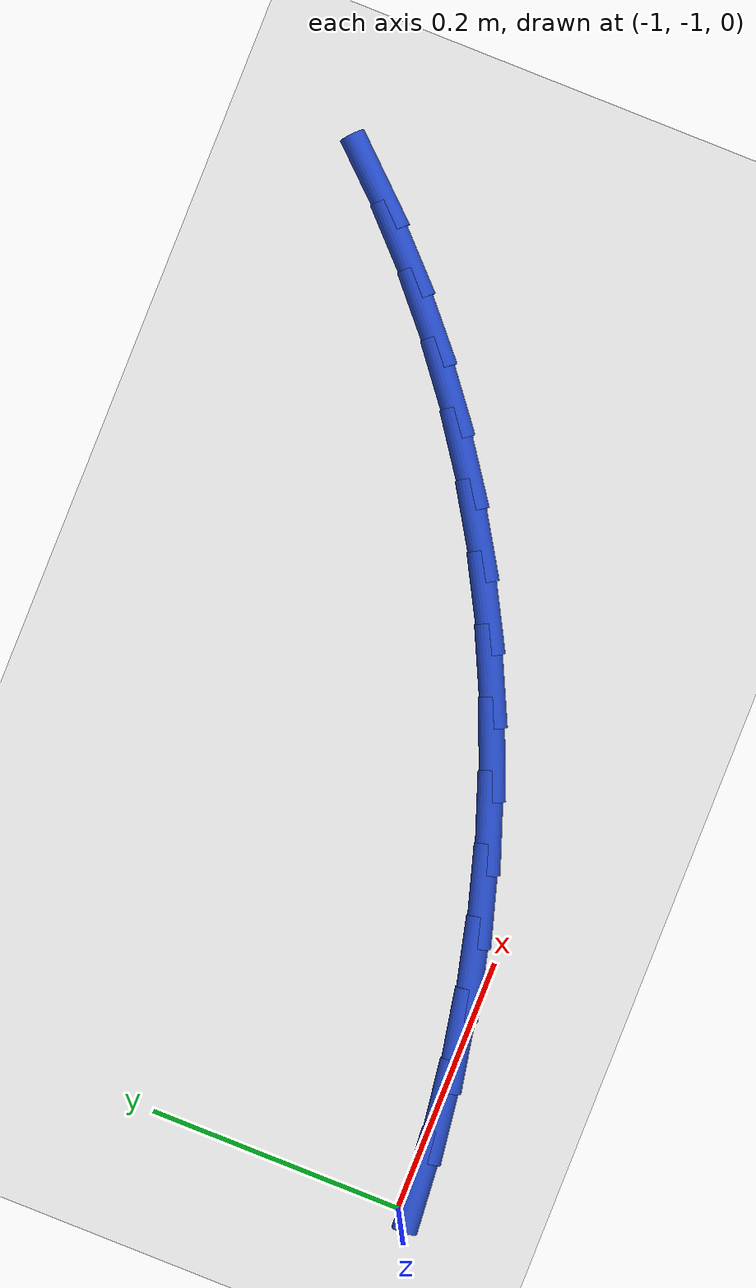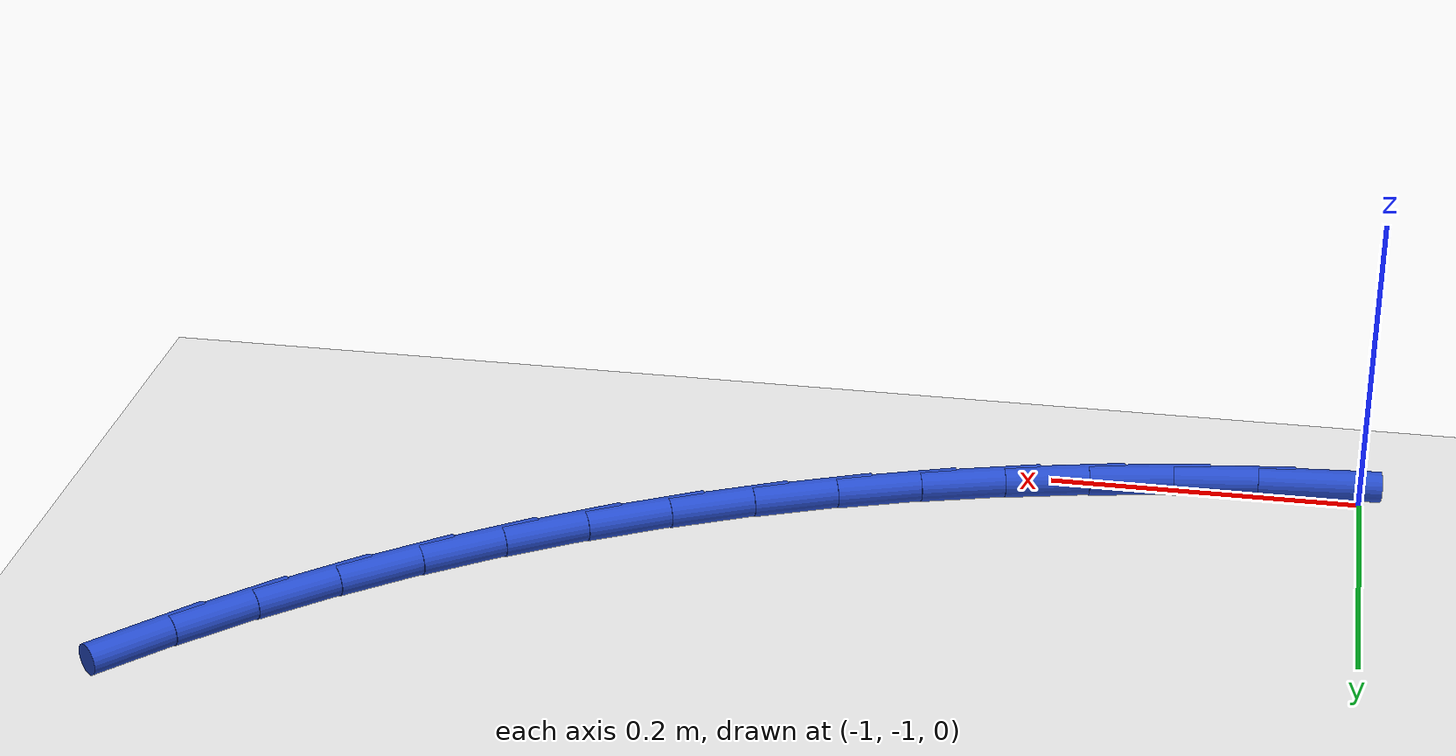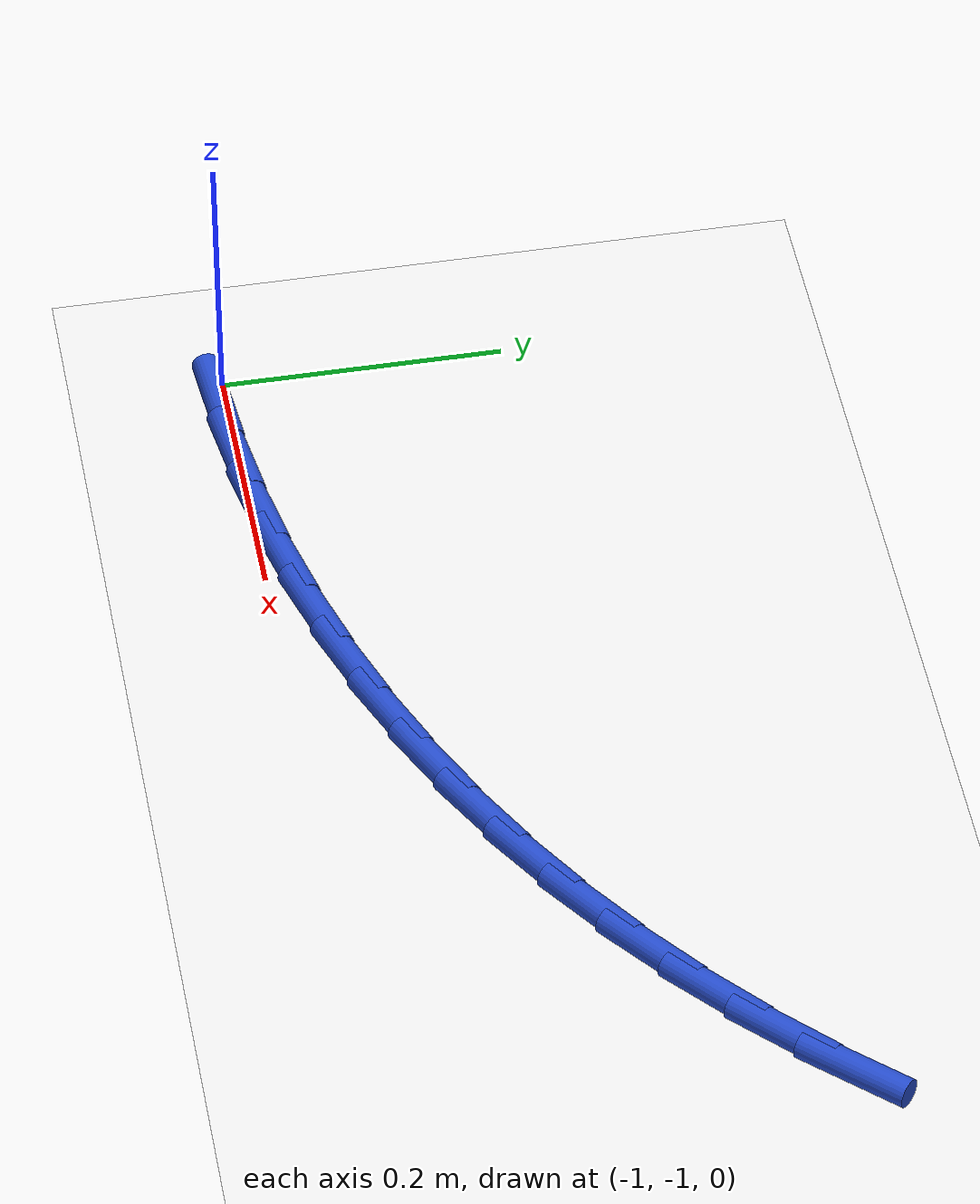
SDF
<sdf version="1.6">
 <world name="default">
  <model name="ground_plane">
   <static>1</static>
   <link name="link">
    <collision name="collision">
     <geometry><plane><normal>0 0 1</normal><size>100 100</size></plane></geometry>
     <surface><friction><ode><mu>100</mu><mu2>50</mu2></ode></friction></surface>
    </collision>
    <visual name="visual">
     <cast_shadows>0</cast_shadows>
     <geometry><plane><normal>0 0 1</normal><size>100 100</size></plane></geometry>
     <material>
      <script><uri>file://media/materials/scripts/gazebo.material</uri><name>Gazebo/WhiteGlow</name></script>
     </material>
    </visual>
   </link>
  </model>
  <model name="line">
   <link name="link_92">
    <pose>-0.9734558798783511 -1.0067008944509477 0.01 0 1.57 0.08328444719657113</pose>
    <collision name="collision">
     <geometry><cylinder><radius>0.01</radius><length>0.08</length></cylinder></geometry>
    </collision>
    <visual name="visual">
     <material>
      <script><name>Gazebo/Blue</name><uri>file://media/materials/scripts/gazebo.material</uri></script>
     </material>
     <geometry><cylinder><radius>0.01</radius><length>0.08</length></cylinder></geometry>
    </visual>
   </link>
   <link name="link_93">
    <pose>-0.9185088797695751 -1.0021140537814608 0.01 0 1.57 0.13458699041180158</pose>
    <collision name="collision">
     <geometry><cylinder><radius>0.01</radius><length>0.08</length></cylinder></geometry>
    </collision>
    <visual name="visual">
     <material>
      <script><name>Gazebo/Blue</name><uri>file://media/materials/scripts/gazebo.material</uri></script>
     </material>
     <geometry><cylinder><radius>0.01</radius><length>0.08</length></cylinder></geometry>
    </visual>
   </link>
   <link name="link_94">
    <pose>-0.8636996952805747 -0.9946925864152601 0.01 0 1.57 0.18554832372393104</pose>
    <collision name="collision">
     <geometry><cylinder><radius>0.01</radius><length>0.08</length></cylinder></geometry>
    </collision>
    <visual name="visual">
     <material>
      <script><name>Gazebo/Blue</name><uri>file://media/materials/scripts/gazebo.material</uri></script>
     </material>
     <geometry><cylinder><radius>0.01</radius><length>0.08</length></cylinder></geometry>
    </visual>
   </link>
   <link name="link_95">
    <pose>-0.809215688389461 -0.9844655337283084 0.01 0 1.57 0.23642854008055744</pose>
    <collision name="collision">
     <geometry><cylinder><radius>0.01</radius><length>0.08</length></cylinder></geometry>
    </collision>
    <visual name="visual">
     <material>
      <script><name>Gazebo/Blue</name><uri>file://media/materials/scripts/gazebo.material</uri></script>
     </material>
     <geometry><cylinder><radius>0.01</radius><length>0.08</length></cylinder></geometry>
    </visual>
   </link>
   <link name="link_96">
    <pose>-0.7552442210743454 -0.9714619370965677 0.01 0 1.57 0.28748469710778074</pose>
    <collision name="collision">
     <geometry><cylinder><radius>0.01</radius><length>0.08</length></cylinder></geometry>
    </collision>
    <visual name="visual">
     <material>
      <script><name>Gazebo/Blue</name><uri>file://media/materials/scripts/gazebo.material</uri></script>
     </material>
     <geometry><cylinder><radius>0.01</radius><length>0.08</length></cylinder></geometry>
    </visual>
   </link>
   <link name="link_97">
    <pose>-0.7019726553133424 -0.9557108378960023 0.01 0 1.57 0.3389697637907815</pose>
    <collision name="collision">
     <geometry><cylinder><radius>0.01</radius><length>0.08</length></cylinder></geometry>
    </collision>
    <visual name="visual">
     <material>
      <script><name>Gazebo/Blue</name><uri>file://media/materials/scripts/gazebo.material</uri></script>
     </material>
     <geometry><cylinder><radius>0.01</radius><length>0.08</length></cylinder></geometry>
    </visual>
   </link>
   <link name="link_98">
    <pose>-0.6495883530845631 -0.9372412775025741 0.01 0 1.57 0.39113128748771897</pose>
    <collision name="collision">
     <geometry><cylinder><radius>0.01</radius><length>0.08</length></cylinder></geometry>
    </collision>
    <visual name="visual">
     <material>
      <script><name>Gazebo/Blue</name><uri>file://media/materials/scripts/gazebo.material</uri></script>
     </material>
     <geometry><cylinder><radius>0.01</radius><length>0.08</length></cylinder></geometry>
    </visual>
   </link>
   <link name="link_99">
    <pose>-0.5982786763661199 -0.9160822972922472 0.01 0 1.57 0.4442094971681144</pose>
    <collision name="collision">
     <geometry><cylinder><radius>0.01</radius><length>0.08</length></cylinder></geometry>
    </collision>
    <visual name="visual">
     <material>
      <script><name>Gazebo/Blue</name><uri>file://media/materials/scripts/gazebo.material</uri></script>
     </material>
     <geometry><cylinder><radius>0.01</radius><length>0.08</length></cylinder></geometry>
    </visual>
   </link>
   <link name="link_100">
    <pose>-0.548230987136125 -0.8922629386409838 0.01 0 1.57 0.49843456463473</pose>
    <collision name="collision">
     <geometry><cylinder><radius>0.01</radius><length>0.08</length></cylinder></geometry>
    </collision>
    <visual name="visual">
     <material>
      <script><name>Gazebo/Blue</name><uri>file://media/materials/scripts/gazebo.material</uri></script>
     </material>
     <geometry><cylinder><radius>0.01</radius><length>0.08</length></cylinder></geometry>
    </visual>
   </link>
   <link name="link_101">
    <pose>-0.4996326473662619 -0.8658122429305358 0.01 0 1.57 0.5536833933616365</pose>
    <collision name="collision">
     <geometry><cylinder><radius>0.01</radius><length>0.08</length></cylinder></geometry>
    </collision>
    <visual name="visual">
     <material>
      <script><name>Gazebo/Blue</name><uri>file://media/materials/scripts/gazebo.material</uri></script>
     </material>
     <geometry><cylinder><radius>0.01</radius><length>0.08</length></cylinder></geometry>
    </visual>
   </link>
   <link name="link_102">
    <pose>-0.4526565090832243 -0.8367723138794432 0.01 0 1.57 0.608787828161764</pose>
    <collision name="collision">
     <geometry><cylinder><radius>0.01</radius><length>0.08</length></cylinder></geometry>
    </collision>
    <visual name="visual">
     <material>
      <script><name>Gazebo/Blue</name><uri>file://media/materials/scripts/gazebo.material</uri></script>
     </material>
     <geometry><cylinder><radius>0.01</radius><length>0.08</length></cylinder></geometry>
    </visual>
   </link>
   <link name="link_103">
    <pose>-0.40741870679549214 -0.8052363142092497 0.01 0 1.57 0.6635231607317552</pose>
    <collision name="collision">
     <geometry><cylinder><radius>0.01</radius><length>0.08</length></cylinder></geometry>
    </collision>
    <visual name="visual">
     <material>
      <script><name>Gazebo/Blue</name><uri>file://media/materials/scripts/gazebo.material</uri></script>
     </material>
     <geometry><cylinder><radius>0.01</radius><length>0.08</length></cylinder></geometry>
    </visual>
   </link>
   <link name="link_104">
    <pose>-0.3640215187004352 -0.771309880555252 0.01 0 1.57 0.7179921754494184</pose>
    <collision name="collision">
     <geometry><cylinder><radius>0.01</radius><length>0.08</length></cylinder></geometry>
    </collision>
    <visual name="visual">
     <material>
      <script><name>Gazebo/Blue</name><uri>file://media/materials/scripts/gazebo.material</uri></script>
     </material>
     <geometry><cylinder><radius>0.01</radius><length>0.08</length></cylinder></geometry>
    </visual>
   </link>
   <link name="link_105">
    <pose>-0.32256722299542534 -0.7350986495527491 0.01 0 1.57 0.7723045707284387</pose>
    <collision name="collision">
     <geometry><cylinder><radius>0.01</radius><length>0.08</length></cylinder></geometry>
    </collision>
    <visual name="visual">
     <material>
      <script><name>Gazebo/Blue</name><uri>file://media/materials/scripts/gazebo.material</uri></script>
     </material>
     <geometry><cylinder><radius>0.01</radius><length>0.08</length></cylinder></geometry>
    </visual>
   </link>
   <link name="link_106">
    <pose>-0.2831580978778325 -0.6967082578370374 0.01 0 1.57 0.8265741700202835</pose>
    <collision name="collision">
     <geometry><cylinder><radius>0.01</radius><length>0.08</length></cylinder></geometry>
    </collision>
    <visual name="visual">
     <material>
      <script><name>Gazebo/Blue</name><uri>file://media/materials/scripts/gazebo.material</uri></script>
     </material>
     <geometry><cylinder><radius>0.01</radius><length>0.08</length></cylinder></geometry>
    </visual>
   </link>
  </model>
 </world>
</sdf>
